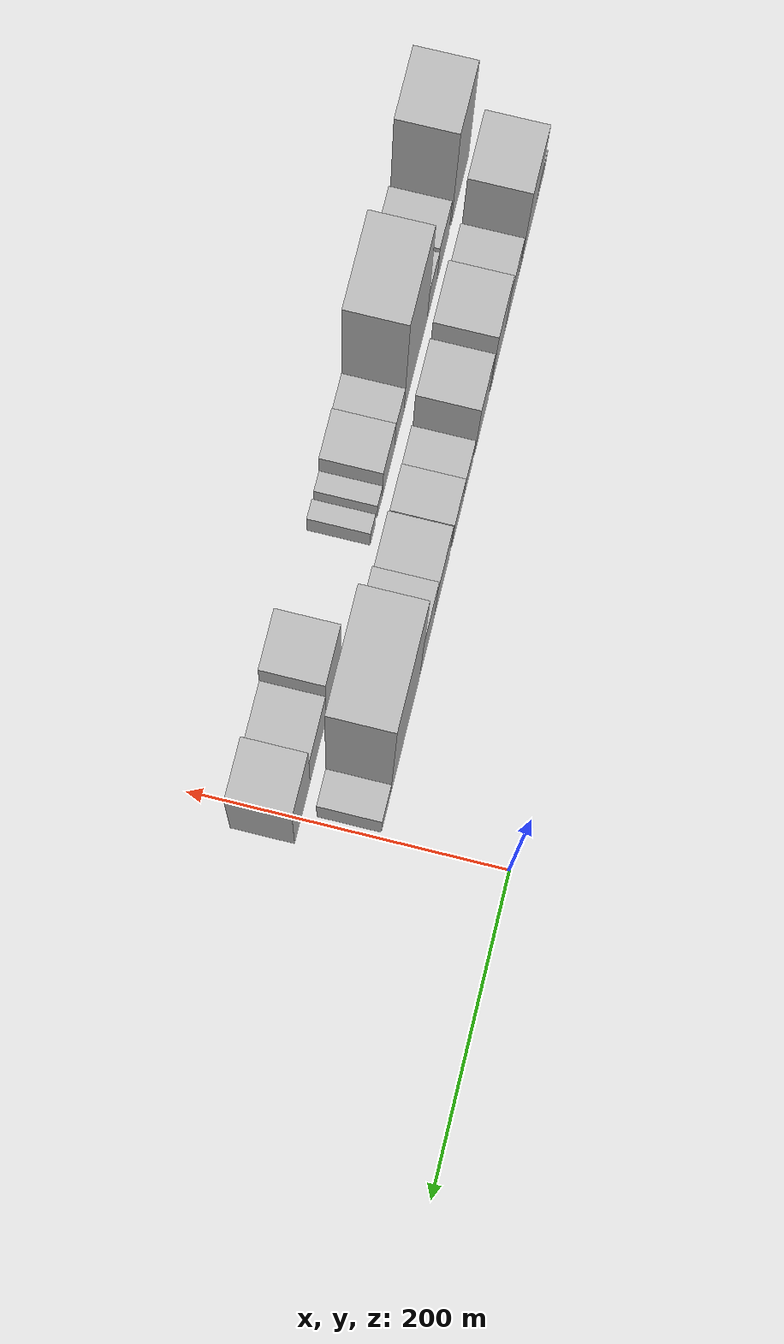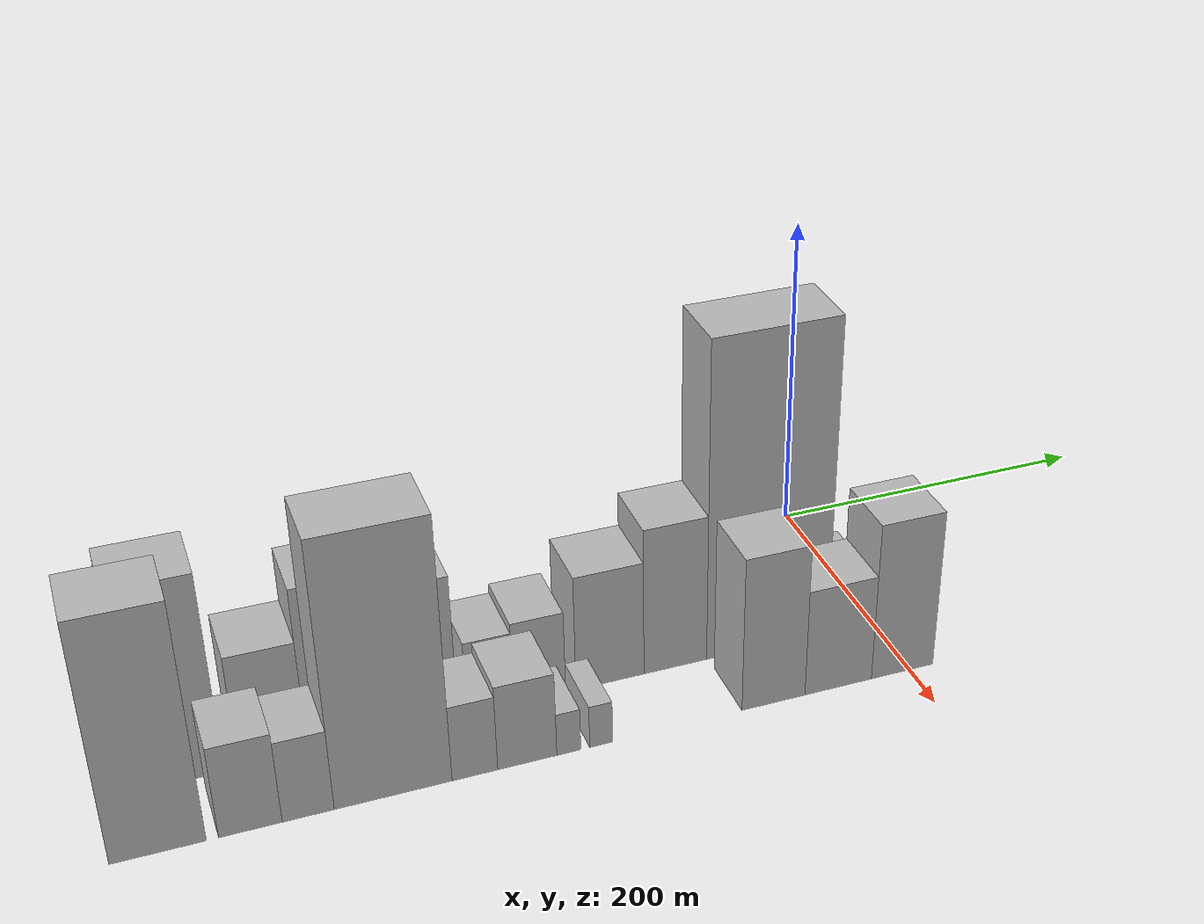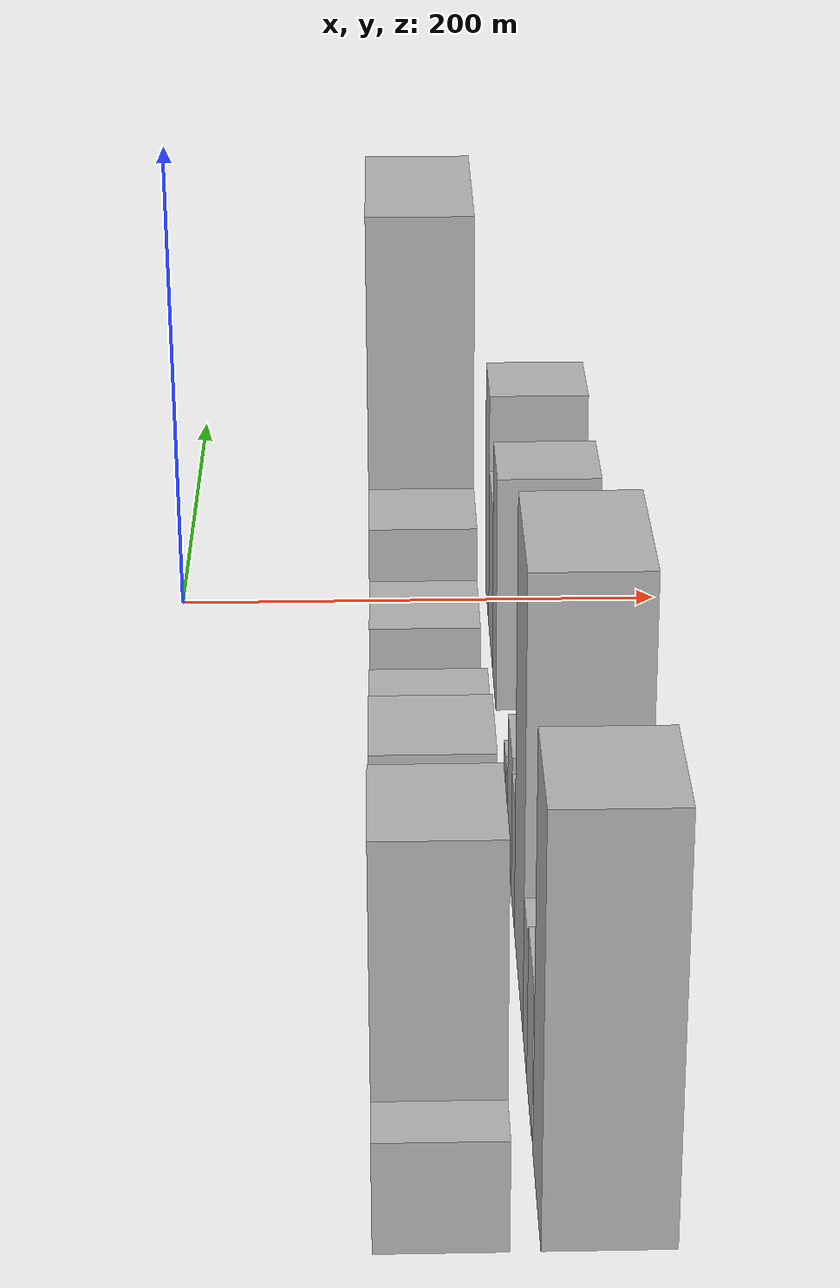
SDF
<sdf version="1.6">
 <world name="default">
  <model name="building_1">
   <static>1</static>
   <pose>100.0000 -427.9123 0 0.000000 0.000000 0.000000</pose>
   <link name="link">
    <pose>0 0 19.50 0 0 0</pose>
    <collision name="collision"><geometry><box><size>40.0000 20.1754 39.0000</size></box></geometry></collision>
    <visual name="visual">
     <cast_shadows>0</cast_shadows>
     <geometry><box><size>40.0000 20.1754 39.0000</size></box></geometry>
     <material>
      <script>
       <uri>model://HANNAS_wall/materials/scripts</uri>
       <uri>model://HANNAS_wall/materials/textures</uri>
       <name>vrc/HANNAS_wall</name>
      </script>
     </material>
    </visual>
   </link>
  </model>
  <model name="building_2">
   <static>1</static>
   <pose>100.0000 -395.5756 0 0.000000 0.000000 0.000000</pose>
   <link name="link">
    <pose>0 0 63.00 0 0 0</pose>
    <collision name="collision"><geometry><box><size>40.0000 44.4979 126.0000</size></box></geometry></collision>
    <visual name="visual">
     <cast_shadows>0</cast_shadows>
     <geometry><box><size>40.0000 44.4979 126.0000</size></box></geometry>
     <material>
      <script>
       <uri>model://HANNAS_wall/materials/scripts</uri>
       <uri>model://HANNAS_wall/materials/textures</uri>
       <name>vrc/HANNAS_wall</name>
      </script>
     </material>
    </visual>
   </link>
  </model>
  <model name="building_3">
   <static>1</static>
   <pose>100.0000 -369.6705 0 0.000000 0.000000 0.000000</pose>
   <link name="link">
    <pose>0 0 7.50 0 0 0</pose>
    <collision name="collision"><geometry><box><size>40.0000 7.3124 15.0000</size></box></geometry></collision>
    <visual name="visual">
     <cast_shadows>0</cast_shadows>
     <geometry><box><size>40.0000 7.3124 15.0000</size></box></geometry>
     <material>
      <script>
       <uri>model://HANNAS_wall/materials/scripts</uri>
       <uri>model://HANNAS_wall/materials/textures</uri>
       <name>vrc/HANNAS_wall</name>
      </script>
     </material>
    </visual>
   </link>
  </model>
  <model name="building_4">
   <static>1</static>
   <pose>100.0000 -347.7024 0 0.000000 0.000000 0.000000</pose>
   <link name="link">
    <pose>0 0 36.00 0 0 0</pose>
    <collision name="collision"><geometry><box><size>40.0000 36.6237 72.0000</size></box></geometry></collision>
    <visual name="visual">
     <cast_shadows>0</cast_shadows>
     <geometry><box><size>40.0000 36.6237 72.0000</size></box></geometry>
     <material>
      <script>
       <uri>model://HANNAS_wall/materials/scripts</uri>
       <uri>model://HANNAS_wall/materials/textures</uri>
       <name>vrc/HANNAS_wall</name>
      </script>
     </material>
    </visual>
   </link>
  </model>
  <model name="building_5">
   <static>1</static>
   <pose>100.0000 -309.4797 0 0.000000 0.000000 0.000000</pose>
   <link name="link">
    <pose>0 0 52.50 0 0 0</pose>
    <collision name="collision"><geometry><box><size>40.0000 39.8216 105.0000</size></box></geometry></collision>
    <visual name="visual">
     <cast_shadows>0</cast_shadows>
     <geometry><box><size>40.0000 39.8216 105.0000</size></box></geometry>
     <material>
      <script>
       <uri>model://HANNAS_wall/materials/scripts</uri>
       <uri>model://HANNAS_wall/materials/textures</uri>
       <name>vrc/HANNAS_wall</name>
      </script>
     </material>
    </visual>
   </link>
  </model>
  <model name="building_6">
   <static>1</static>
   <pose>100.0000 -265.4744 0 0.000000 0.000000 0.000000</pose>
   <link name="link">
    <pose>0 0 46.50 0 0 0</pose>
    <collision name="collision"><geometry><box><size>40.0000 36.1890 93.0000</size></box></geometry></collision>
    <visual name="visual">
     <cast_shadows>0</cast_shadows>
     <geometry><box><size>40.0000 36.1890 93.0000</size></box></geometry>
     <material>
      <script>
       <uri>model://HANNAS_wall/materials/scripts</uri>
       <uri>model://HANNAS_wall/materials/textures</uri>
       <name>vrc/HANNAS_wall</name>
      </script>
     </material>
    </visual>
   </link>
  </model>
  <model name="building_7">
   <static>1</static>
   <pose>100.0000 -229.1972 0 0.000000 0.000000 0.000000</pose>
   <link name="link">
    <pose>0 0 24.00 0 0 0</pose>
    <collision name="collision"><geometry><box><size>40.0000 26.3653 48.0000</size></box></geometry></collision>
    <visual name="visual">
     <cast_shadows>0</cast_shadows>
     <geometry><box><size>40.0000 26.3653 48.0000</size></box></geometry>
     <material>
      <script>
       <uri>model://HANNAS_wall/materials/scripts</uri>
       <uri>model://HANNAS_wall/materials/textures</uri>
       <name>vrc/HANNAS_wall</name>
      </script>
     </material>
    </visual>
   </link>
  </model>
  <model name="building_8">
   <static>1</static>
   <pose>100.0000 -201.0641 0 0.000000 0.000000 0.000000</pose>
   <link name="link">
    <pose>0 0 27.00 0 0 0</pose>
    <collision name="collision"><geometry><box><size>40.0000 29.9008 54.0000</size></box></geometry></collision>
    <visual name="visual">
     <cast_shadows>0</cast_shadows>
     <geometry><box><size>40.0000 29.9008 54.0000</size></box></geometry>
     <material>
      <script>
       <uri>model://HANNAS_wall/materials/scripts</uri>
       <uri>model://HANNAS_wall/materials/textures</uri>
       <name>vrc/HANNAS_wall</name>
      </script>
     </material>
    </visual>
   </link>
  </model>
  <model name="building_9">
   <static>1</static>
   <pose>100.0000 -160.1070 0 0.000000 0.000000 0.000000</pose>
   <link name="link">
    <pose>0 0 37.50 0 0 0</pose>
    <collision name="collision"><geometry><box><size>40.0000 40.0134 75.0000</size></box></geometry></collision>
    <visual name="visual">
     <cast_shadows>0</cast_shadows>
     <geometry><box><size>40.0000 40.0134 75.0000</size></box></geometry>
     <material>
      <script>
       <uri>model://HANNAS_wall/materials/scripts</uri>
       <uri>model://HANNAS_wall/materials/textures</uri>
       <name>vrc/HANNAS_wall</name>
      </script>
     </material>
    </visual>
   </link>
  </model>
  <model name="building_10">
   <static>1</static>
   <pose>100.0000 -121.2777 0 0.000000 0.000000 0.000000</pose>
   <link name="link">
    <pose>0 0 48.00 0 0 0</pose>
    <collision name="collision"><geometry><box><size>40.0000 37.6452 96.0000</size></box></geometry></collision>
    <visual name="visual">
     <cast_shadows>0</cast_shadows>
     <geometry><box><size>40.0000 37.6452 96.0000</size></box></geometry>
     <material>
      <script>
       <uri>model://HANNAS_wall/materials/scripts</uri>
       <uri>model://HANNAS_wall/materials/textures</uri>
       <name>vrc/HANNAS_wall</name>
      </script>
     </material>
    </visual>
   </link>
  </model>
  <model name="building_11">
   <static>1</static>
   <pose>100.0000 -64.9338 0 0.000000 0.000000 0.000000</pose>
   <link name="link">
    <pose>0 0 102.00 0 0 0</pose>
    <collision name="collision"><geometry><box><size>40.0000 75.0425 204.0000</size></box></geometry></collision>
    <visual name="visual">
     <cast_shadows>0</cast_shadows>
     <geometry><box><size>40.0000 75.0425 204.0000</size></box></geometry>
     <material>
      <script>
       <uri>model://HANNAS_wall/materials/scripts</uri>
       <uri>model://HANNAS_wall/materials/textures</uri>
       <name>vrc/HANNAS_wall</name>
      </script>
     </material>
    </visual>
   </link>
  </model>
  <model name="building_12">
   <static>1</static>
   <pose>100.0000 -15.8375 0 0.000000 0.000000 0.000000</pose>
   <link name="link">
    <pose>0 0 19.50 0 0 0</pose>
    <collision name="collision"><geometry><box><size>40.0000 23.1502 39.0000</size></box></geometry></collision>
    <visual name="visual">
     <cast_shadows>0</cast_shadows>
     <geometry><box><size>40.0000 23.1502 39.0000</size></box></geometry>
     <material>
      <script>
       <uri>model://HANNAS_wall/materials/scripts</uri>
       <uri>model://HANNAS_wall/materials/textures</uri>
       <name>vrc/HANNAS_wall</name>
      </script>
     </material>
    </visual>
   </link>
  </model>
  <model name="building_25">
   <static>1</static>
   <pose>149.0000 -414.2627 0 0.000000 0.000000 0.000000</pose>
   <link name="link">
    <pose>0 0 73.50 0 0 0</pose>
    <collision name="collision"><geometry><box><size>40.0000 47.4746 147.0000</size></box></geometry></collision>
    <visual name="visual">
     <cast_shadows>0</cast_shadows>
     <geometry><box><size>40.0000 47.4746 147.0000</size></box></geometry>
     <material>
      <script>
       <uri>model://HANNAS_wall/materials/scripts</uri>
       <uri>model://HANNAS_wall/materials/textures</uri>
       <name>vrc/HANNAS_wall</name>
      </script>
     </material>
    </visual>
   </link>
  </model>
  <model name="building_26">
   <static>1</static>
   <pose>149.0000 -368.5491 0 0.000000 0.000000 0.000000</pose>
   <link name="link">
    <pose>0 0 28.50 0 0 0</pose>
    <collision name="collision"><geometry><box><size>40.0000 31.9525 57.0000</size></box></geometry></collision>
    <visual name="visual">
     <cast_shadows>0</cast_shadows>
     <geometry><box><size>40.0000 31.9525 57.0000</size></box></geometry>
     <material>
      <script>
       <uri>model://HANNAS_wall/materials/scripts</uri>
       <uri>model://HANNAS_wall/materials/textures</uri>
       <name>vrc/HANNAS_wall</name>
      </script>
     </material>
    </visual>
   </link>
  </model>
  <model name="building_27">
   <static>1</static>
   <pose>149.0000 -339.2804 0 0.000000 0.000000 0.000000</pose>
   <link name="link">
    <pose>0 0 25.50 0 0 0</pose>
    <collision name="collision"><geometry><box><size>40.0000 26.5847 51.0000</size></box></geometry></collision>
    <visual name="visual">
     <cast_shadows>0</cast_shadows>
     <geometry><box><size>40.0000 26.5847 51.0000</size></box></geometry>
     <material>
      <script>
       <uri>model://HANNAS_wall/materials/scripts</uri>
       <uri>model://HANNAS_wall/materials/textures</uri>
       <name>vrc/HANNAS_wall</name>
      </script>
     </material>
    </visual>
   </link>
  </model>
  <model name="building_28">
   <static>1</static>
   <pose>149.0000 -295.0832 0 0.000000 0.000000 0.000000</pose>
   <link name="link">
    <pose>0 0 82.50 0 0 0</pose>
    <collision name="collision"><geometry><box><size>40.0000 61.8098 165.0000</size></box></geometry></collision>
    <visual name="visual">
     <cast_shadows>0</cast_shadows>
     <geometry><box><size>40.0000 61.8098 165.0000</size></box></geometry>
     <material>
      <script>
       <uri>model://HANNAS_wall/materials/scripts</uri>
       <uri>model://HANNAS_wall/materials/textures</uri>
       <name>vrc/HANNAS_wall</name>
      </script>
     </material>
    </visual>
   </link>
  </model>
  <model name="building_29">
   <static>1</static>
   <pose>149.0000 -251.8682 0 0.000000 0.000000 0.000000</pose>
   <link name="link">
    <pose>0 0 24.00 0 0 0</pose>
    <collision name="collision"><geometry><box><size>40.0000 24.6201 48.0000</size></box></geometry></collision>
    <visual name="visual">
     <cast_shadows>0</cast_shadows>
     <geometry><box><size>40.0000 24.6201 48.0000</size></box></geometry>
     <material>
      <script>
       <uri>model://HANNAS_wall/materials/scripts</uri>
       <uri>model://HANNAS_wall/materials/textures</uri>
       <name>vrc/HANNAS_wall</name>
      </script>
     </material>
    </visual>
   </link>
  </model>
  <model name="building_30">
   <static>1</static>
   <pose>149.0000 -223.3613 0 0.000000 0.000000 0.000000</pose>
   <link name="link">
    <pose>0 0 27.00 0 0 0</pose>
    <collision name="collision"><geometry><box><size>40.0000 32.3937 54.0000</size></box></geometry></collision>
    <visual name="visual">
     <cast_shadows>0</cast_shadows>
     <geometry><box><size>40.0000 32.3937 54.0000</size></box></geometry>
     <material>
      <script>
       <uri>model://HANNAS_wall/materials/scripts</uri>
       <uri>model://HANNAS_wall/materials/textures</uri>
       <name>vrc/HANNAS_wall</name>
      </script>
     </material>
    </visual>
   </link>
  </model>
  <model name="building_31">
   <static>1</static>
   <pose>149.0000 -200.5132 0 0.000000 0.000000 0.000000</pose>
   <link name="link">
    <pose>0 0 13.50 0 0 0</pose>
    <collision name="collision"><geometry><box><size>40.0000 13.3026 27.0000</size></box></geometry></collision>
    <visual name="visual">
     <cast_shadows>0</cast_shadows>
     <geometry><box><size>40.0000 13.3026 27.0000</size></box></geometry>
     <material>
      <script>
       <uri>model://HANNAS_wall/materials/scripts</uri>
       <uri>model://HANNAS_wall/materials/textures</uri>
       <name>vrc/HANNAS_wall</name>
      </script>
     </material>
    </visual>
   </link>
  </model>
  <model name="building_32">
   <static>1</static>
   <pose>149.0000 -182.4101 0 0.000000 0.000000 0.000000</pose>
   <link name="link">
    <pose>0 0 13.50 0 0 0</pose>
    <collision name="collision"><geometry><box><size>40.0000 12.9036 27.0000</size></box></geometry></collision>
    <visual name="visual">
     <cast_shadows>0</cast_shadows>
     <geometry><box><size>40.0000 12.9036 27.0000</size></box></geometry>
     <material>
      <script>
       <uri>model://HANNAS_wall/materials/scripts</uri>
       <uri>model://HANNAS_wall/materials/textures</uri>
       <name>vrc/HANNAS_wall</name>
      </script>
     </material>
    </visual>
   </link>
  </model>
  <model name="building_33">
   <static>1</static>
   <pose>149.0000 -82.5987 0 0.000000 0.000000 0.000000</pose>
   <link name="link">
    <pose>0 0 49.50 0 0 0</pose>
    <collision name="collision"><geometry><box><size>40.0000 37.5730 99.0000</size></box></geometry></collision>
    <visual name="visual">
     <cast_shadows>0</cast_shadows>
     <geometry><box><size>40.0000 37.5730 99.0000</size></box></geometry>
     <material>
      <script>
       <uri>model://HANNAS_wall/materials/scripts</uri>
       <uri>model://HANNAS_wall/materials/textures</uri>
       <name>vrc/HANNAS_wall</name>
      </script>
     </material>
    </visual>
   </link>
  </model>
  <model name="building_34">
   <static>1</static>
   <pose>149.0000 -43.5563 0 0.000000 0.000000 0.000000</pose>
   <link name="link">
    <pose>0 0 34.50 0 0 0</pose>
    <collision name="collision"><geometry><box><size>40.0000 40.5119 69.0000</size></box></geometry></collision>
    <visual name="visual">
     <cast_shadows>0</cast_shadows>
     <geometry><box><size>40.0000 40.5119 69.0000</size></box></geometry>
     <material>
      <script>
       <uri>model://HANNAS_wall/materials/scripts</uri>
       <uri>model://HANNAS_wall/materials/textures</uri>
       <name>vrc/HANNAS_wall</name>
      </script>
     </material>
    </visual>
   </link>
  </model>
  <model name="building_35">
   <static>1</static>
   <pose>149.0000 -4.1934 0 0.000000 0.000000 0.000000</pose>
   <link name="link">
    <pose>0 0 51.00 0 0 0</pose>
    <collision name="collision"><geometry><box><size>40.0000 38.2138 102.0000</size></box></geometry></collision>
    <visual name="visual">
     <cast_shadows>0</cast_shadows>
     <geometry><box><size>40.0000 38.2138 102.0000</size></box></geometry>
     <material>
      <script>
       <uri>model://HANNAS_wall/materials/scripts</uri>
       <uri>model://HANNAS_wall/materials/textures</uri>
       <name>vrc/HANNAS_wall</name>
      </script>
     </material>
    </visual>
   </link>
  </model>
 </world>
</sdf>
